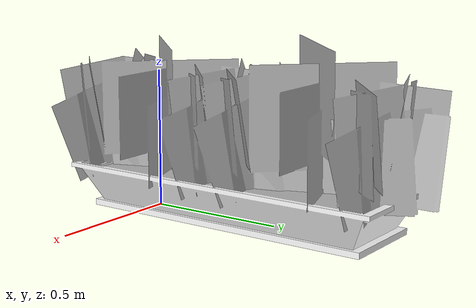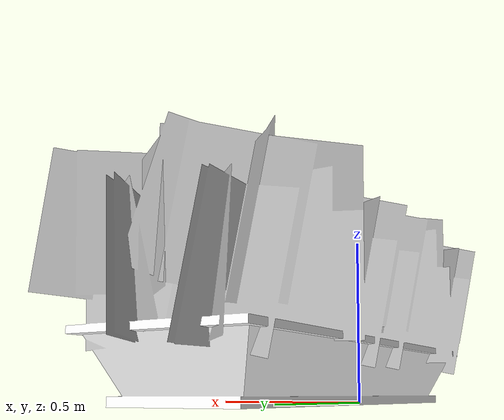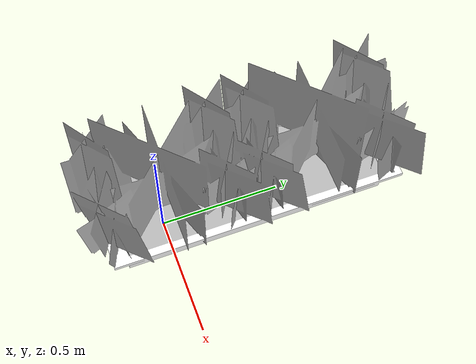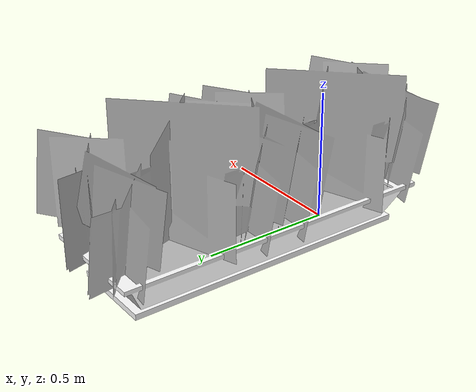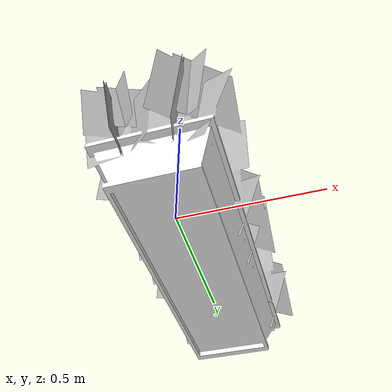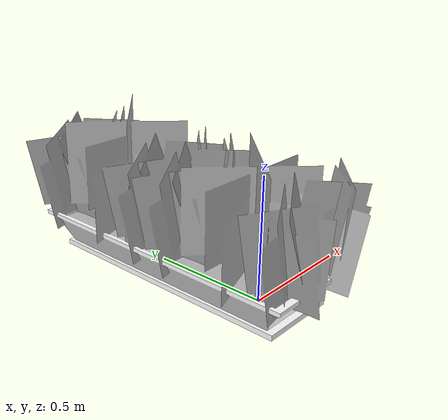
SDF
<?xml version="1.0" ?>
<sdf version="1.5">
  <model name="Flowers 1 mid">
    <pose>0 0 0 0 0 0</pose>
    <static>true</static>
    <link name="link">
      <inertial>
        <mass>0.1</mass>
        <inertia>
          <ixx>1</ixx>
          <ixy>0</ixy>
          <ixz>0</ixz>
          <iyy>1</iyy>
          <iyz>0</iyz>
          <izz>1</izz>
        </inertia>
      </inertial>
      <collision name="collision">
        <pose>-0.02 0.35 0.25 0 0 0</pose>
        <geometry>
          <box>
            <size>0.5 1.2 0.5</size>
          </box>
        </geometry>
        <surface>
          <contact>
            <ode>
              <max_vel>0.1</max_vel>
              <min_depth>0.001</min_depth>
            </ode>
          </contact>
        </surface>
      </collision>
      <visual name="visual">
        <geometry>
          <mesh>
            <uri>model://gd_flowers1_mid/meshes/gd_flowers1_mid.dae</uri>
          </mesh>
        </geometry>
      </visual>
    </link>
  </model>
</sdf>
